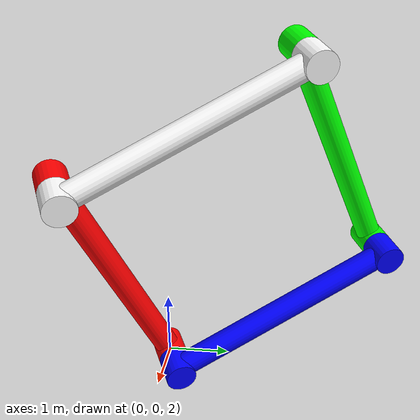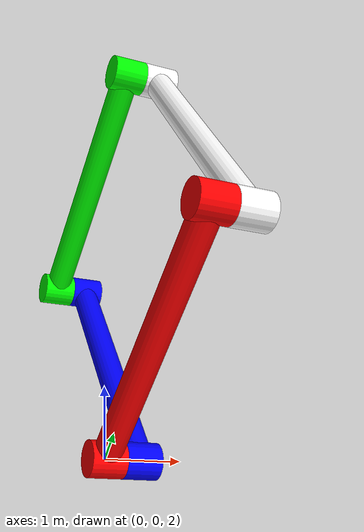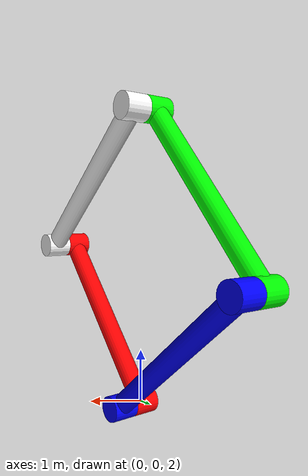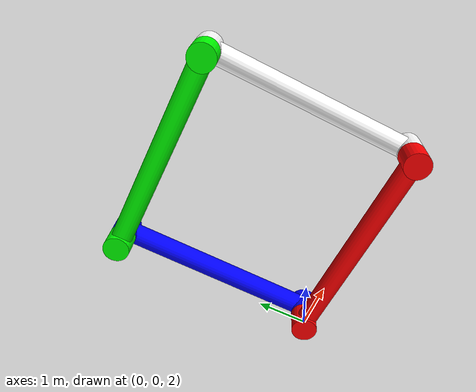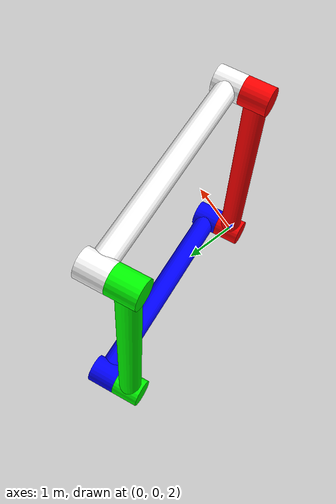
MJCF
<mujoco>
    <option gravity="0 0 0" timestep="0.002" />
    <asset>
        <material name="blue_" rgba="0 0 1 1" />
        <material name="green" rgba="0 1 0 1" />
        <material name="red__" rgba="1 0 0 1" />
        <material name="white" rgba="1 1 1 1" />
    </asset>

    <worldbody>
        <light diffuse=".5 .5 .5" pos="0 0 3" dir="0 0 -1" />
        <body name="link_1" pos="0 0 2" euler="20 20 20">
            <geom type="cylinder" size=".2    2" pos="0 0 2" euler="0 0 0" material="red__"/>
            <geom type="cylinder" size=".25 .25" pos="0 0 4" euler="0 90 0" material="red__"/>
            <geom type="cylinder" size=".25 .25" pos="0 0 0" euler="0 90 0" material="red__"/>
            <body name="link_2" pos="0.5 0 0" euler="0 0 0">
                <joint name="hinge_1" pos="0 0 0" axis="1 0 0" />
                <geom type="cylinder" size=".2    2" pos="0 2 0" euler="90 0 0" material="blue_"/>
                <geom type="cylinder" size=".25 .25" pos="0 4 0" euler="0 90 0" material="blue_"/>
                <geom type="cylinder" size=".25 .25" pos="0 0 0" euler="0 90 0" material="blue_"/>
                <body name="link_3" pos="-0.5 4 0" euler="0 0 0">
                    <joint name="hinge_2" pos="0 0 0" axis="1 0 0" />
                    <geom type="cylinder" size=".2    2" pos="0 0 2" euler="0 0 0" material="green"/>
                    <geom type="cylinder" size=".25 .25" pos="0 0 0" euler="0 90 0" material="green"/>
                    <geom type="cylinder" size=".25 .25" pos="0 0 4" euler="0 90 0" material="green"/>
                    <body name="link_4" pos="0.5 0 4" euler="0 0 0">
                        <joint name="hinge_3" pos="0 0 0" axis="1 0 0" />
                        <geom type="cylinder" size=".2    2" pos="0 -2 0" euler="90 0 0" material="white"/>
                        <geom type="cylinder" size=".25 .25" pos="0 0 0" euler="0 90 0" material="white"/>
                        <geom type="cylinder" size=".25 .25" pos="0 -4 0" euler="0 90 0" material="white"/>
                    </body>
                </body>
            </body>
        </body>
    </worldbody>
    <equality>
        <weld name="kinematic_link1" active="true" body1="link_1" body2="link_4" anchor="0 0 4" />
    </equality>

</mujoco>
